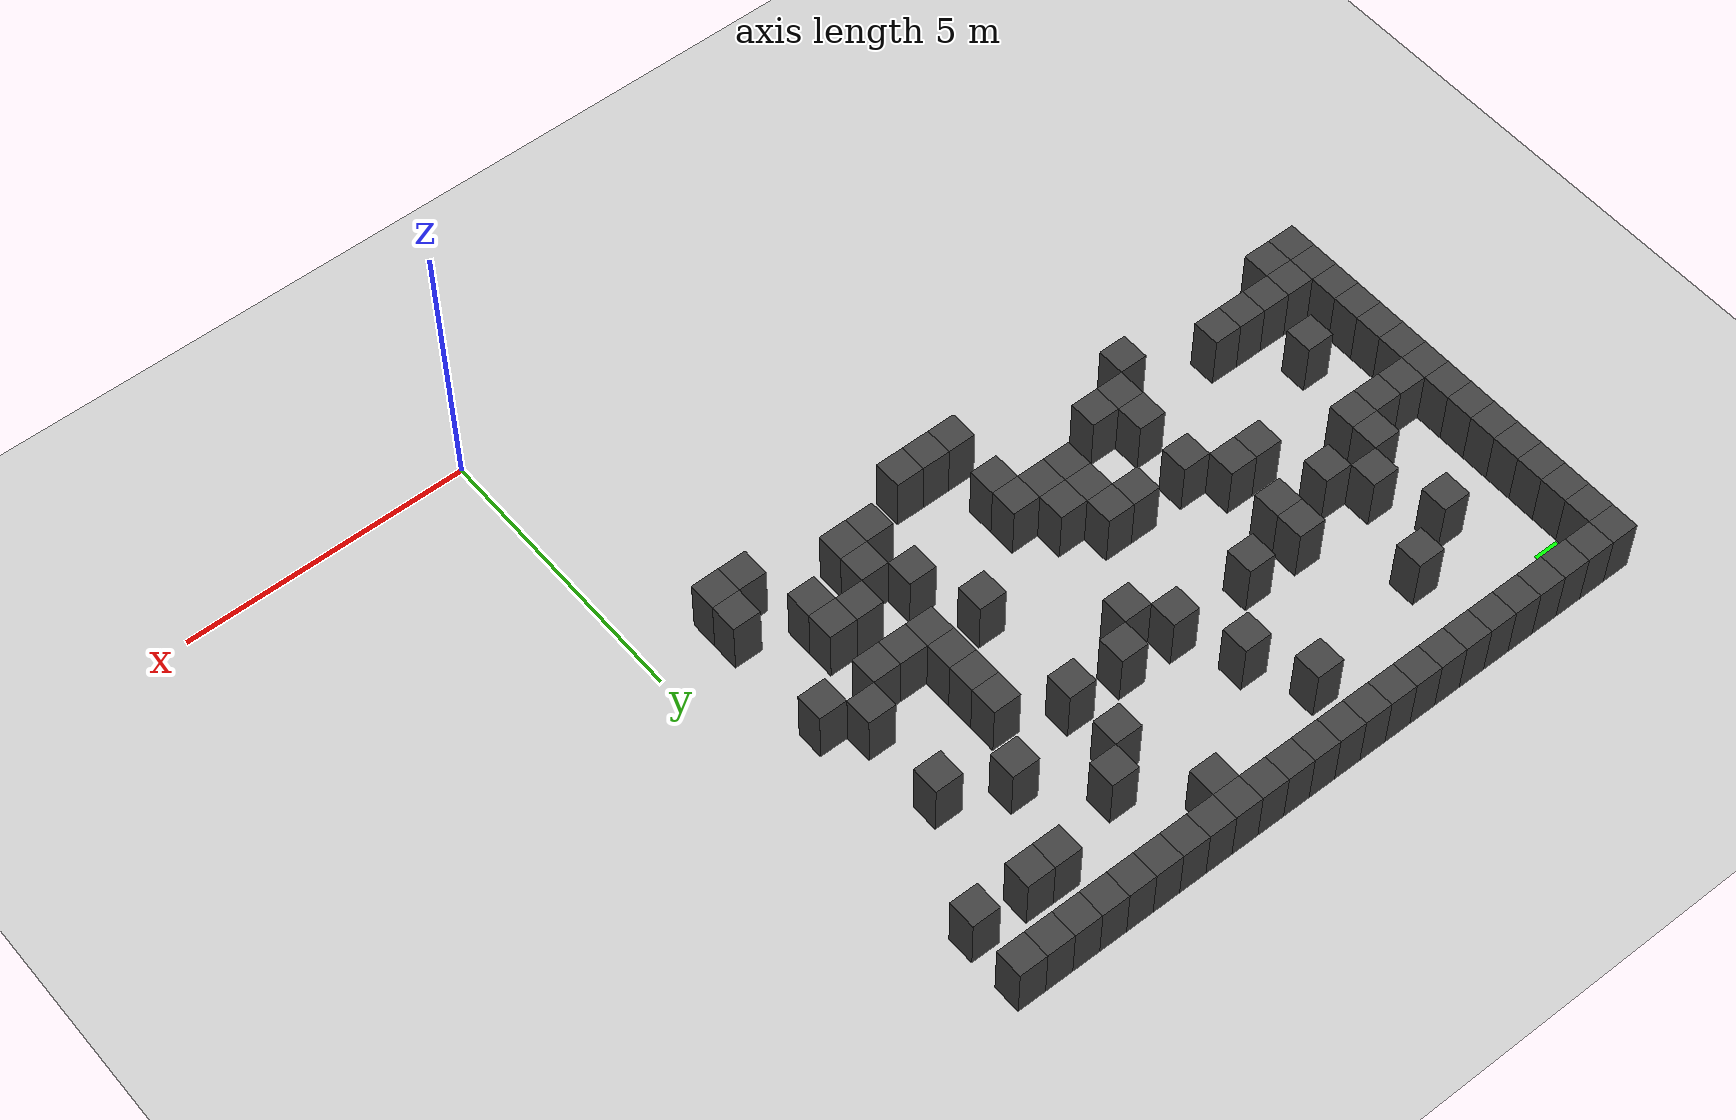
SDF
<sdf version="1.7">
 <world name="map_3955">
  <model name="ground_plane">
   <static>true</static>
   <link name="link">
    <collision name="collision">
     <geometry><plane><normal>0 0 1</normal><size>200 200</size></plane></geometry>
    </collision>
    <visual name="visual">
     <geometry><plane><normal>0 0 1</normal><size>200 200</size></plane></geometry>
     <material><ambient>0.8 0.8 0.8 1</ambient><diffuse>0.8 0.8 0.8 1</diffuse></material>
    </visual>
   </link>
  </model>
  <model name="maze_environment">
   <static>true</static>
   <link name="wall_0">
    <pose>-12.250 12.250 0.500 0 0 0</pose>
    <collision name="col"><geometry><box><size>0.5 0.5 1.0</size></box></geometry></collision>
    <visual name="vis">
     <geometry><box><size>0.5 0.5 1.0</size></box></geometry>
     <material><ambient>0.15 0.15 0.15 1</ambient><diffuse>0.25 0.25 0.25 1</diffuse></material>
    </visual>
   </link>
   <link name="wall_1">
    <pose>-11.750 12.250 0.500 0 0 0</pose>
    <collision name="col"><geometry><box><size>0.5 0.5 1.0</size></box></geometry></collision>
    <visual name="vis">
     <geometry><box><size>0.5 0.5 1.0</size></box></geometry>
     <material><ambient>0.15 0.15 0.15 1</ambient><diffuse>0.25 0.25 0.25 1</diffuse></material>
    </visual>
   </link>
   <link name="wall_2">
    <pose>-11.250 12.250 0.500 0 0 0</pose>
    <collision name="col"><geometry><box><size>0.5 0.5 1.0</size></box></geometry></collision>
    <visual name="vis">
     <geometry><box><size>0.5 0.5 1.0</size></box></geometry>
     <material><ambient>0.15 0.15 0.15 1</ambient><diffuse>0.25 0.25 0.25 1</diffuse></material>
    </visual>
   </link>
   <link name="wall_3">
    <pose>-10.750 12.250 0.500 0 0 0</pose>
    <collision name="col"><geometry><box><size>0.5 0.5 1.0</size></box></geometry></collision>
    <visual name="vis">
     <geometry><box><size>0.5 0.5 1.0</size></box></geometry>
     <material><ambient>0.15 0.15 0.15 1</ambient><diffuse>0.25 0.25 0.25 1</diffuse></material>
    </visual>
   </link>
   <link name="wall_4">
    <pose>-10.250 12.250 0.500 0 0 0</pose>
    <collision name="col"><geometry><box><size>0.5 0.5 1.0</size></box></geometry></collision>
    <visual name="vis">
     <geometry><box><size>0.5 0.5 1.0</size></box></geometry>
     <material><ambient>0.15 0.15 0.15 1</ambient><diffuse>0.25 0.25 0.25 1</diffuse></material>
    </visual>
   </link>
   <link name="wall_5">
    <pose>-9.750 12.250 0.500 0 0 0</pose>
    <collision name="col"><geometry><box><size>0.5 0.5 1.0</size></box></geometry></collision>
    <visual name="vis">
     <geometry><box><size>0.5 0.5 1.0</size></box></geometry>
     <material><ambient>0.15 0.15 0.15 1</ambient><diffuse>0.25 0.25 0.25 1</diffuse></material>
    </visual>
   </link>
   <link name="wall_6">
    <pose>-9.250 12.250 0.500 0 0 0</pose>
    <collision name="col"><geometry><box><size>0.5 0.5 1.0</size></box></geometry></collision>
    <visual name="vis">
     <geometry><box><size>0.5 0.5 1.0</size></box></geometry>
     <material><ambient>0.15 0.15 0.15 1</ambient><diffuse>0.25 0.25 0.25 1</diffuse></material>
    </visual>
   </link>
   <link name="wall_7">
    <pose>-8.750 12.250 0.500 0 0 0</pose>
    <collision name="col"><geometry><box><size>0.5 0.5 1.0</size></box></geometry></collision>
    <visual name="vis">
     <geometry><box><size>0.5 0.5 1.0</size></box></geometry>
     <material><ambient>0.15 0.15 0.15 1</ambient><diffuse>0.25 0.25 0.25 1</diffuse></material>
    </visual>
   </link>
   <link name="wall_8">
    <pose>-8.250 12.250 0.500 0 0 0</pose>
    <collision name="col"><geometry><box><size>0.5 0.5 1.0</size></box></geometry></collision>
    <visual name="vis">
     <geometry><box><size>0.5 0.5 1.0</size></box></geometry>
     <material><ambient>0.15 0.15 0.15 1</ambient><diffuse>0.25 0.25 0.25 1</diffuse></material>
    </visual>
   </link>
   <link name="wall_9">
    <pose>-7.750 12.250 0.500 0 0 0</pose>
    <collision name="col"><geometry><box><size>0.5 0.5 1.0</size></box></geometry></collision>
    <visual name="vis">
     <geometry><box><size>0.5 0.5 1.0</size></box></geometry>
     <material><ambient>0.15 0.15 0.15 1</ambient><diffuse>0.25 0.25 0.25 1</diffuse></material>
    </visual>
   </link>
   <link name="wall_10">
    <pose>-7.250 12.250 0.500 0 0 0</pose>
    <collision name="col"><geometry><box><size>0.5 0.5 1.0</size></box></geometry></collision>
    <visual name="vis">
     <geometry><box><size>0.5 0.5 1.0</size></box></geometry>
     <material><ambient>0.15 0.15 0.15 1</ambient><diffuse>0.25 0.25 0.25 1</diffuse></material>
    </visual>
   </link>
   <link name="wall_11">
    <pose>-6.750 12.250 0.500 0 0 0</pose>
    <collision name="col"><geometry><box><size>0.5 0.5 1.0</size></box></geometry></collision>
    <visual name="vis">
     <geometry><box><size>0.5 0.5 1.0</size></box></geometry>
     <material><ambient>0.15 0.15 0.15 1</ambient><diffuse>0.25 0.25 0.25 1</diffuse></material>
    </visual>
   </link>
   <link name="wall_12">
    <pose>-6.250 12.250 0.500 0 0 0</pose>
    <collision name="col"><geometry><box><size>0.5 0.5 1.0</size></box></geometry></collision>
    <visual name="vis">
     <geometry><box><size>0.5 0.5 1.0</size></box></geometry>
     <material><ambient>0.15 0.15 0.15 1</ambient><diffuse>0.25 0.25 0.25 1</diffuse></material>
    </visual>
   </link>
   <link name="wall_13">
    <pose>-5.750 12.250 0.500 0 0 0</pose>
    <collision name="col"><geometry><box><size>0.5 0.5 1.0</size></box></geometry></collision>
    <visual name="vis">
     <geometry><box><size>0.5 0.5 1.0</size></box></geometry>
     <material><ambient>0.15 0.15 0.15 1</ambient><diffuse>0.25 0.25 0.25 1</diffuse></material>
    </visual>
   </link>
   <link name="wall_14">
    <pose>-5.250 12.250 0.500 0 0 0</pose>
    <collision name="col"><geometry><box><size>0.5 0.5 1.0</size></box></geometry></collision>
    <visual name="vis">
     <geometry><box><size>0.5 0.5 1.0</size></box></geometry>
     <material><ambient>0.15 0.15 0.15 1</ambient><diffuse>0.25 0.25 0.25 1</diffuse></material>
    </visual>
   </link>
   <link name="wall_15">
    <pose>-4.750 12.250 0.500 0 0 0</pose>
    <collision name="col"><geometry><box><size>0.5 0.5 1.0</size></box></geometry></collision>
    <visual name="vis">
     <geometry><box><size>0.5 0.5 1.0</size></box></geometry>
     <material><ambient>0.15 0.15 0.15 1</ambient><diffuse>0.25 0.25 0.25 1</diffuse></material>
    </visual>
   </link>
   <link name="wall_16">
    <pose>-4.250 12.250 0.500 0 0 0</pose>
    <collision name="col"><geometry><box><size>0.5 0.5 1.0</size></box></geometry></collision>
    <visual name="vis">
     <geometry><box><size>0.5 0.5 1.0</size></box></geometry>
     <material><ambient>0.15 0.15 0.15 1</ambient><diffuse>0.25 0.25 0.25 1</diffuse></material>
    </visual>
   </link>
   <link name="wall_17">
    <pose>-3.750 12.250 0.500 0 0 0</pose>
    <collision name="col"><geometry><box><size>0.5 0.5 1.0</size></box></geometry></collision>
    <visual name="vis">
     <geometry><box><size>0.5 0.5 1.0</size></box></geometry>
     <material><ambient>0.15 0.15 0.15 1</ambient><diffuse>0.25 0.25 0.25 1</diffuse></material>
    </visual>
   </link>
   <link name="wall_18">
    <pose>-3.250 12.250 0.500 0 0 0</pose>
    <collision name="col"><geometry><box><size>0.5 0.5 1.0</size></box></geometry></collision>
    <visual name="vis">
     <geometry><box><size>0.5 0.5 1.0</size></box></geometry>
     <material><ambient>0.15 0.15 0.15 1</ambient><diffuse>0.25 0.25 0.25 1</diffuse></material>
    </visual>
   </link>
   <link name="wall_19">
    <pose>-2.750 12.250 0.500 0 0 0</pose>
    <collision name="col"><geometry><box><size>0.5 0.5 1.0</size></box></geometry></collision>
    <visual name="vis">
     <geometry><box><size>0.5 0.5 1.0</size></box></geometry>
     <material><ambient>0.15 0.15 0.15 1</ambient><diffuse>0.25 0.25 0.25 1</diffuse></material>
    </visual>
   </link>
   <link name="wall_20">
    <pose>-2.250 12.250 0.500 0 0 0</pose>
    <collision name="col"><geometry><box><size>0.5 0.5 1.0</size></box></geometry></collision>
    <visual name="vis">
     <geometry><box><size>0.5 0.5 1.0</size></box></geometry>
     <material><ambient>0.15 0.15 0.15 1</ambient><diffuse>0.25 0.25 0.25 1</diffuse></material>
    </visual>
   </link>
   <link name="wall_21">
    <pose>-1.750 12.250 0.500 0 0 0</pose>
    <collision name="col"><geometry><box><size>0.5 0.5 1.0</size></box></geometry></collision>
    <visual name="vis">
     <geometry><box><size>0.5 0.5 1.0</size></box></geometry>
     <material><ambient>0.15 0.15 0.15 1</ambient><diffuse>0.25 0.25 0.25 1</diffuse></material>
    </visual>
   </link>
   <link name="wall_22">
    <pose>-1.250 12.250 0.500 0 0 0</pose>
    <collision name="col"><geometry><box><size>0.5 0.5 1.0</size></box></geometry></collision>
    <visual name="vis">
     <geometry><box><size>0.5 0.5 1.0</size></box></geometry>
     <material><ambient>0.15 0.15 0.15 1</ambient><diffuse>0.25 0.25 0.25 1</diffuse></material>
    </visual>
   </link>
   <link name="wall_23">
    <pose>-0.750 12.250 0.500 0 0 0</pose>
    <collision name="col"><geometry><box><size>0.5 0.5 1.0</size></box></geometry></collision>
    <visual name="vis">
     <geometry><box><size>0.5 0.5 1.0</size></box></geometry>
     <material><ambient>0.15 0.15 0.15 1</ambient><diffuse>0.25 0.25 0.25 1</diffuse></material>
    </visual>
   </link>
   <link name="wall_50">
    <pose>-12.250 11.750 0.500 0 0 0</pose>
    <collision name="col"><geometry><box><size>0.5 0.5 1.0</size></box></geometry></collision>
    <visual name="vis">
     <geometry><box><size>0.5 0.5 1.0</size></box></geometry>
     <material><ambient>0.15 0.15 0.15 1</ambient><diffuse>0.25 0.25 0.25 1</diffuse></material>
    </visual>
   </link>
   <link name="wall_51">
    <pose>-4.750 11.750 0.500 0 0 0</pose>
    <collision name="col"><geometry><box><size>0.5 0.5 1.0</size></box></geometry></collision>
    <visual name="vis">
     <geometry><box><size>0.5 0.5 1.0</size></box></geometry>
     <material><ambient>0.15 0.15 0.15 1</ambient><diffuse>0.25 0.25 0.25 1</diffuse></material>
    </visual>
   </link>
   <link name="wall_58">
    <pose>-12.250 11.250 0.500 0 0 0</pose>
    <collision name="col"><geometry><box><size>0.5 0.5 1.0</size></box></geometry></collision>
    <visual name="vis">
     <geometry><box><size>0.5 0.5 1.0</size></box></geometry>
     <material><ambient>0.15 0.15 0.15 1</ambient><diffuse>0.25 0.25 0.25 1</diffuse></material>
    </visual>
   </link>
   <link name="wall_59">
    <pose>-7.250 11.250 0.500 0 0 0</pose>
    <collision name="col"><geometry><box><size>0.5 0.5 1.0</size></box></geometry></collision>
    <visual name="vis">
     <geometry><box><size>0.5 0.5 1.0</size></box></geometry>
     <material><ambient>0.15 0.15 0.15 1</ambient><diffuse>0.25 0.25 0.25 1</diffuse></material>
    </visual>
   </link>
   <link name="wall_60">
    <pose>-2.250 11.250 0.500 0 0 0</pose>
    <collision name="col"><geometry><box><size>0.5 0.5 1.0</size></box></geometry></collision>
    <visual name="vis">
     <geometry><box><size>0.5 0.5 1.0</size></box></geometry>
     <material><ambient>0.15 0.15 0.15 1</ambient><diffuse>0.25 0.25 0.25 1</diffuse></material>
    </visual>
   </link>
   <link name="wall_61">
    <pose>-1.750 11.250 0.500 0 0 0</pose>
    <collision name="col"><geometry><box><size>0.5 0.5 1.0</size></box></geometry></collision>
    <visual name="vis">
     <geometry><box><size>0.5 0.5 1.0</size></box></geometry>
     <material><ambient>0.15 0.15 0.15 1</ambient><diffuse>0.25 0.25 0.25 1</diffuse></material>
    </visual>
   </link>
   <link name="wall_62">
    <pose>-0.750 11.250 0.500 0 0 0</pose>
    <collision name="col"><geometry><box><size>0.5 0.5 1.0</size></box></geometry></collision>
    <visual name="vis">
     <geometry><box><size>0.5 0.5 1.0</size></box></geometry>
     <material><ambient>0.15 0.15 0.15 1</ambient><diffuse>0.25 0.25 0.25 1</diffuse></material>
    </visual>
   </link>
   <link name="wall_69">
    <pose>-12.250 10.750 0.500 0 0 0</pose>
    <collision name="col"><geometry><box><size>0.5 0.5 1.0</size></box></geometry></collision>
    <visual name="vis">
     <geometry><box><size>0.5 0.5 1.0</size></box></geometry>
     <material><ambient>0.15 0.15 0.15 1</ambient><diffuse>0.25 0.25 0.25 1</diffuse></material>
    </visual>
   </link>
   <link name="wall_70">
    <pose>-9.750 10.750 0.500 0 0 0</pose>
    <collision name="col"><geometry><box><size>0.5 0.5 1.0</size></box></geometry></collision>
    <visual name="vis">
     <geometry><box><size>0.5 0.5 1.0</size></box></geometry>
     <material><ambient>0.15 0.15 0.15 1</ambient><diffuse>0.25 0.25 0.25 1</diffuse></material>
    </visual>
   </link>
   <link name="wall_71">
    <pose>-3.750 10.750 0.500 0 0 0</pose>
    <collision name="col"><geometry><box><size>0.5 0.5 1.0</size></box></geometry></collision>
    <visual name="vis">
     <geometry><box><size>0.5 0.5 1.0</size></box></geometry>
     <material><ambient>0.15 0.15 0.15 1</ambient><diffuse>0.25 0.25 0.25 1</diffuse></material>
    </visual>
   </link>
   <link name="wall_77">
    <pose>-12.250 10.250 0.500 0 0 0</pose>
    <collision name="col"><geometry><box><size>0.5 0.5 1.0</size></box></geometry></collision>
    <visual name="vis">
     <geometry><box><size>0.5 0.5 1.0</size></box></geometry>
     <material><ambient>0.15 0.15 0.15 1</ambient><diffuse>0.25 0.25 0.25 1</diffuse></material>
    </visual>
   </link>
   <link name="wall_78">
    <pose>-10.750 10.250 0.500 0 0 0</pose>
    <collision name="col"><geometry><box><size>0.5 0.5 1.0</size></box></geometry></collision>
    <visual name="vis">
     <geometry><box><size>0.5 0.5 1.0</size></box></geometry>
     <material><ambient>0.15 0.15 0.15 1</ambient><diffuse>0.25 0.25 0.25 1</diffuse></material>
    </visual>
   </link>
   <link name="wall_79">
    <pose>-6.750 10.250 0.500 0 0 0</pose>
    <collision name="col"><geometry><box><size>0.5 0.5 1.0</size></box></geometry></collision>
    <visual name="vis">
     <geometry><box><size>0.5 0.5 1.0</size></box></geometry>
     <material><ambient>0.15 0.15 0.15 1</ambient><diffuse>0.25 0.25 0.25 1</diffuse></material>
    </visual>
   </link>
   <link name="wall_80">
    <pose>-4.250 10.250 0.500 0 0 0</pose>
    <collision name="col"><geometry><box><size>0.5 0.5 1.0</size></box></geometry></collision>
    <visual name="vis">
     <geometry><box><size>0.5 0.5 1.0</size></box></geometry>
     <material><ambient>0.15 0.15 0.15 1</ambient><diffuse>0.25 0.25 0.25 1</diffuse></material>
    </visual>
   </link>
   <link name="wall_87">
    <pose>-12.250 9.750 0.500 0 0 0</pose>
    <collision name="col"><geometry><box><size>0.5 0.5 1.0</size></box></geometry></collision>
    <visual name="vis">
     <geometry><box><size>0.5 0.5 1.0</size></box></geometry>
     <material><ambient>0.15 0.15 0.15 1</ambient><diffuse>0.25 0.25 0.25 1</diffuse></material>
    </visual>
   </link>
   <link name="wall_88">
    <pose>-2.750 9.750 0.500 0 0 0</pose>
    <collision name="col"><geometry><box><size>0.5 0.5 1.0</size></box></geometry></collision>
    <visual name="vis">
     <geometry><box><size>0.5 0.5 1.0</size></box></geometry>
     <material><ambient>0.15 0.15 0.15 1</ambient><diffuse>0.25 0.25 0.25 1</diffuse></material>
    </visual>
   </link>
   <link name="wall_99">
    <pose>-12.250 9.250 0.500 0 0 0</pose>
    <collision name="col"><geometry><box><size>0.5 0.5 1.0</size></box></geometry></collision>
    <visual name="vis">
     <geometry><box><size>0.5 0.5 1.0</size></box></geometry>
     <material><ambient>0.15 0.15 0.15 1</ambient><diffuse>0.25 0.25 0.25 1</diffuse></material>
    </visual>
   </link>
   <link name="wall_100">
    <pose>-10.250 9.250 0.500 0 0 0</pose>
    <collision name="col"><geometry><box><size>0.5 0.5 1.0</size></box></geometry></collision>
    <visual name="vis">
     <geometry><box><size>0.5 0.5 1.0</size></box></geometry>
     <material><ambient>0.15 0.15 0.15 1</ambient><diffuse>0.25 0.25 0.25 1</diffuse></material>
    </visual>
   </link>
   <link name="wall_101">
    <pose>-8.750 9.250 0.500 0 0 0</pose>
    <collision name="col"><geometry><box><size>0.5 0.5 1.0</size></box></geometry></collision>
    <visual name="vis">
     <geometry><box><size>0.5 0.5 1.0</size></box></geometry>
     <material><ambient>0.15 0.15 0.15 1</ambient><diffuse>0.25 0.25 0.25 1</diffuse></material>
    </visual>
   </link>
   <link name="wall_102">
    <pose>-7.750 9.250 0.500 0 0 0</pose>
    <collision name="col"><geometry><box><size>0.5 0.5 1.0</size></box></geometry></collision>
    <visual name="vis">
     <geometry><box><size>0.5 0.5 1.0</size></box></geometry>
     <material><ambient>0.15 0.15 0.15 1</ambient><diffuse>0.25 0.25 0.25 1</diffuse></material>
    </visual>
   </link>
   <link name="wall_103">
    <pose>-6.250 9.250 0.500 0 0 0</pose>
    <collision name="col"><geometry><box><size>0.5 0.5 1.0</size></box></geometry></collision>
    <visual name="vis">
     <geometry><box><size>0.5 0.5 1.0</size></box></geometry>
     <material><ambient>0.15 0.15 0.15 1</ambient><diffuse>0.25 0.25 0.25 1</diffuse></material>
    </visual>
   </link>
   <link name="wall_104">
    <pose>-5.250 9.250 0.500 0 0 0</pose>
    <collision name="col"><geometry><box><size>0.5 0.5 1.0</size></box></geometry></collision>
    <visual name="vis">
     <geometry><box><size>0.5 0.5 1.0</size></box></geometry>
     <material><ambient>0.15 0.15 0.15 1</ambient><diffuse>0.25 0.25 0.25 1</diffuse></material>
    </visual>
   </link>
   <link name="wall_105">
    <pose>-4.250 9.250 0.500 0 0 0</pose>
    <collision name="col"><geometry><box><size>0.5 0.5 1.0</size></box></geometry></collision>
    <visual name="vis">
     <geometry><box><size>0.5 0.5 1.0</size></box></geometry>
     <material><ambient>0.15 0.15 0.15 1</ambient><diffuse>0.25 0.25 0.25 1</diffuse></material>
    </visual>
   </link>
   <link name="wall_106">
    <pose>-1.750 9.250 0.500 0 0 0</pose>
    <collision name="col"><geometry><box><size>0.5 0.5 1.0</size></box></geometry></collision>
    <visual name="vis">
     <geometry><box><size>0.5 0.5 1.0</size></box></geometry>
     <material><ambient>0.15 0.15 0.15 1</ambient><diffuse>0.25 0.25 0.25 1</diffuse></material>
    </visual>
   </link>
   <link name="wall_116">
    <pose>-12.250 8.750 0.500 0 0 0</pose>
    <collision name="col"><geometry><box><size>0.5 0.5 1.0</size></box></geometry></collision>
    <visual name="vis">
     <geometry><box><size>0.5 0.5 1.0</size></box></geometry>
     <material><ambient>0.15 0.15 0.15 1</ambient><diffuse>0.25 0.25 0.25 1</diffuse></material>
    </visual>
   </link>
   <link name="wall_117">
    <pose>-10.750 8.750 0.500 0 0 0</pose>
    <collision name="col"><geometry><box><size>0.5 0.5 1.0</size></box></geometry></collision>
    <visual name="vis">
     <geometry><box><size>0.5 0.5 1.0</size></box></geometry>
     <material><ambient>0.15 0.15 0.15 1</ambient><diffuse>0.25 0.25 0.25 1</diffuse></material>
    </visual>
   </link>
   <link name="wall_118">
    <pose>-9.750 8.750 0.500 0 0 0</pose>
    <collision name="col"><geometry><box><size>0.5 0.5 1.0</size></box></geometry></collision>
    <visual name="vis">
     <geometry><box><size>0.5 0.5 1.0</size></box></geometry>
     <material><ambient>0.15 0.15 0.15 1</ambient><diffuse>0.25 0.25 0.25 1</diffuse></material>
    </visual>
   </link>
   <link name="wall_119">
    <pose>-8.750 8.750 0.500 0 0 0</pose>
    <collision name="col"><geometry><box><size>0.5 0.5 1.0</size></box></geometry></collision>
    <visual name="vis">
     <geometry><box><size>0.5 0.5 1.0</size></box></geometry>
     <material><ambient>0.15 0.15 0.15 1</ambient><diffuse>0.25 0.25 0.25 1</diffuse></material>
    </visual>
   </link>
   <link name="wall_120">
    <pose>-5.750 8.750 0.500 0 0 0</pose>
    <collision name="col"><geometry><box><size>0.5 0.5 1.0</size></box></geometry></collision>
    <visual name="vis">
     <geometry><box><size>0.5 0.5 1.0</size></box></geometry>
     <material><ambient>0.15 0.15 0.15 1</ambient><diffuse>0.25 0.25 0.25 1</diffuse></material>
    </visual>
   </link>
   <link name="wall_121">
    <pose>-3.250 8.750 0.500 0 0 0</pose>
    <collision name="col"><geometry><box><size>0.5 0.5 1.0</size></box></geometry></collision>
    <visual name="vis">
     <geometry><box><size>0.5 0.5 1.0</size></box></geometry>
     <material><ambient>0.15 0.15 0.15 1</ambient><diffuse>0.25 0.25 0.25 1</diffuse></material>
    </visual>
   </link>
   <link name="wall_130">
    <pose>-12.250 8.250 0.500 0 0 0</pose>
    <collision name="col"><geometry><box><size>0.5 0.5 1.0</size></box></geometry></collision>
    <visual name="vis">
     <geometry><box><size>0.5 0.5 1.0</size></box></geometry>
     <material><ambient>0.15 0.15 0.15 1</ambient><diffuse>0.25 0.25 0.25 1</diffuse></material>
    </visual>
   </link>
   <link name="wall_131">
    <pose>-11.750 8.250 0.500 0 0 0</pose>
    <collision name="col"><geometry><box><size>0.5 0.5 1.0</size></box></geometry></collision>
    <visual name="vis">
     <geometry><box><size>0.5 0.5 1.0</size></box></geometry>
     <material><ambient>0.15 0.15 0.15 1</ambient><diffuse>0.25 0.25 0.25 1</diffuse></material>
    </visual>
   </link>
   <link name="wall_132">
    <pose>-11.250 8.250 0.500 0 0 0</pose>
    <collision name="col"><geometry><box><size>0.5 0.5 1.0</size></box></geometry></collision>
    <visual name="vis">
     <geometry><box><size>0.5 0.5 1.0</size></box></geometry>
     <material><ambient>0.15 0.15 0.15 1</ambient><diffuse>0.25 0.25 0.25 1</diffuse></material>
    </visual>
   </link>
   <link name="wall_133">
    <pose>-10.750 8.250 0.500 0 0 0</pose>
    <collision name="col"><geometry><box><size>0.5 0.5 1.0</size></box></geometry></collision>
    <visual name="vis">
     <geometry><box><size>0.5 0.5 1.0</size></box></geometry>
     <material><ambient>0.15 0.15 0.15 1</ambient><diffuse>0.25 0.25 0.25 1</diffuse></material>
    </visual>
   </link>
   <link name="wall_134">
    <pose>-3.250 8.250 0.500 0 0 0</pose>
    <collision name="col"><geometry><box><size>0.5 0.5 1.0</size></box></geometry></collision>
    <visual name="vis">
     <geometry><box><size>0.5 0.5 1.0</size></box></geometry>
     <material><ambient>0.15 0.15 0.15 1</ambient><diffuse>0.25 0.25 0.25 1</diffuse></material>
    </visual>
   </link>
   <link name="wall_137">
    <pose>-12.250 7.750 0.500 0 0 0</pose>
    <collision name="col"><geometry><box><size>0.5 0.5 1.0</size></box></geometry></collision>
    <visual name="vis">
     <geometry><box><size>0.5 0.5 1.0</size></box></geometry>
     <material><ambient>0.15 0.15 0.15 1</ambient><diffuse>0.25 0.25 0.25 1</diffuse></material>
    </visual>
   </link>
   <link name="wall_138">
    <pose>-9.250 7.750 0.500 0 0 0</pose>
    <collision name="col"><geometry><box><size>0.5 0.5 1.0</size></box></geometry></collision>
    <visual name="vis">
     <geometry><box><size>0.5 0.5 1.0</size></box></geometry>
     <material><ambient>0.15 0.15 0.15 1</ambient><diffuse>0.25 0.25 0.25 1</diffuse></material>
    </visual>
   </link>
   <link name="wall_139">
    <pose>-8.750 7.750 0.500 0 0 0</pose>
    <collision name="col"><geometry><box><size>0.5 0.5 1.0</size></box></geometry></collision>
    <visual name="vis">
     <geometry><box><size>0.5 0.5 1.0</size></box></geometry>
     <material><ambient>0.15 0.15 0.15 1</ambient><diffuse>0.25 0.25 0.25 1</diffuse></material>
    </visual>
   </link>
   <link name="wall_140">
    <pose>-3.250 7.750 0.500 0 0 0</pose>
    <collision name="col"><geometry><box><size>0.5 0.5 1.0</size></box></geometry></collision>
    <visual name="vis">
     <geometry><box><size>0.5 0.5 1.0</size></box></geometry>
     <material><ambient>0.15 0.15 0.15 1</ambient><diffuse>0.25 0.25 0.25 1</diffuse></material>
    </visual>
   </link>
   <link name="wall_141">
    <pose>-1.750 7.750 0.500 0 0 0</pose>
    <collision name="col"><geometry><box><size>0.5 0.5 1.0</size></box></geometry></collision>
    <visual name="vis">
     <geometry><box><size>0.5 0.5 1.0</size></box></geometry>
     <material><ambient>0.15 0.15 0.15 1</ambient><diffuse>0.25 0.25 0.25 1</diffuse></material>
    </visual>
   </link>
   <link name="wall_145">
    <pose>-12.250 7.250 0.500 0 0 0</pose>
    <collision name="col"><geometry><box><size>0.5 0.5 1.0</size></box></geometry></collision>
    <visual name="vis">
     <geometry><box><size>0.5 0.5 1.0</size></box></geometry>
     <material><ambient>0.15 0.15 0.15 1</ambient><diffuse>0.25 0.25 0.25 1</diffuse></material>
    </visual>
   </link>
   <link name="wall_146">
    <pose>-8.250 7.250 0.500 0 0 0</pose>
    <collision name="col"><geometry><box><size>0.5 0.5 1.0</size></box></geometry></collision>
    <visual name="vis">
     <geometry><box><size>0.5 0.5 1.0</size></box></geometry>
     <material><ambient>0.15 0.15 0.15 1</ambient><diffuse>0.25 0.25 0.25 1</diffuse></material>
    </visual>
   </link>
   <link name="wall_147">
    <pose>-7.250 7.250 0.500 0 0 0</pose>
    <collision name="col"><geometry><box><size>0.5 0.5 1.0</size></box></geometry></collision>
    <visual name="vis">
     <geometry><box><size>0.5 0.5 1.0</size></box></geometry>
     <material><ambient>0.15 0.15 0.15 1</ambient><diffuse>0.25 0.25 0.25 1</diffuse></material>
    </visual>
   </link>
   <link name="wall_148">
    <pose>-6.750 7.250 0.500 0 0 0</pose>
    <collision name="col"><geometry><box><size>0.5 0.5 1.0</size></box></geometry></collision>
    <visual name="vis">
     <geometry><box><size>0.5 0.5 1.0</size></box></geometry>
     <material><ambient>0.15 0.15 0.15 1</ambient><diffuse>0.25 0.25 0.25 1</diffuse></material>
    </visual>
   </link>
   <link name="wall_149">
    <pose>-4.250 7.250 0.500 0 0 0</pose>
    <collision name="col"><geometry><box><size>0.5 0.5 1.0</size></box></geometry></collision>
    <visual name="vis">
     <geometry><box><size>0.5 0.5 1.0</size></box></geometry>
     <material><ambient>0.15 0.15 0.15 1</ambient><diffuse>0.25 0.25 0.25 1</diffuse></material>
    </visual>
   </link>
   <link name="wall_150">
    <pose>-3.250 7.250 0.500 0 0 0</pose>
    <collision name="col"><geometry><box><size>0.5 0.5 1.0</size></box></geometry></collision>
    <visual name="vis">
     <geometry><box><size>0.5 0.5 1.0</size></box></geometry>
     <material><ambient>0.15 0.15 0.15 1</ambient><diffuse>0.25 0.25 0.25 1</diffuse></material>
    </visual>
   </link>
   <link name="wall_151">
    <pose>-2.750 7.250 0.500 0 0 0</pose>
    <collision name="col"><geometry><box><size>0.5 0.5 1.0</size></box></geometry></collision>
    <visual name="vis">
     <geometry><box><size>0.5 0.5 1.0</size></box></geometry>
     <material><ambient>0.15 0.15 0.15 1</ambient><diffuse>0.25 0.25 0.25 1</diffuse></material>
    </visual>
   </link>
   <link name="wall_152">
    <pose>-2.250 7.250 0.500 0 0 0</pose>
    <collision name="col"><geometry><box><size>0.5 0.5 1.0</size></box></geometry></collision>
    <visual name="vis">
     <geometry><box><size>0.5 0.5 1.0</size></box></geometry>
     <material><ambient>0.15 0.15 0.15 1</ambient><diffuse>0.25 0.25 0.25 1</diffuse></material>
    </visual>
   </link>
   <link name="wall_153">
    <pose>-1.250 7.250 0.500 0 0 0</pose>
    <collision name="col"><geometry><box><size>0.5 0.5 1.0</size></box></geometry></collision>
    <visual name="vis">
     <geometry><box><size>0.5 0.5 1.0</size></box></geometry>
     <material><ambient>0.15 0.15 0.15 1</ambient><diffuse>0.25 0.25 0.25 1</diffuse></material>
    </visual>
   </link>
   <link name="wall_158">
    <pose>-12.250 6.750 0.500 0 0 0</pose>
    <collision name="col"><geometry><box><size>0.5 0.5 1.0</size></box></geometry></collision>
    <visual name="vis">
     <geometry><box><size>0.5 0.5 1.0</size></box></geometry>
     <material><ambient>0.15 0.15 0.15 1</ambient><diffuse>0.25 0.25 0.25 1</diffuse></material>
    </visual>
   </link>
   <link name="wall_159">
    <pose>-11.250 6.750 0.500 0 0 0</pose>
    <collision name="col"><geometry><box><size>0.5 0.5 1.0</size></box></geometry></collision>
    <visual name="vis">
     <geometry><box><size>0.5 0.5 1.0</size></box></geometry>
     <material><ambient>0.15 0.15 0.15 1</ambient><diffuse>0.25 0.25 0.25 1</diffuse></material>
    </visual>
   </link>
   <link name="wall_160">
    <pose>-6.750 6.750 0.500 0 0 0</pose>
    <collision name="col"><geometry><box><size>0.5 0.5 1.0</size></box></geometry></collision>
    <visual name="vis">
     <geometry><box><size>0.5 0.5 1.0</size></box></geometry>
     <material><ambient>0.15 0.15 0.15 1</ambient><diffuse>0.25 0.25 0.25 1</diffuse></material>
    </visual>
   </link>
   <link name="wall_161">
    <pose>-6.250 6.750 0.500 0 0 0</pose>
    <collision name="col"><geometry><box><size>0.5 0.5 1.0</size></box></geometry></collision>
    <visual name="vis">
     <geometry><box><size>0.5 0.5 1.0</size></box></geometry>
     <material><ambient>0.15 0.15 0.15 1</ambient><diffuse>0.25 0.25 0.25 1</diffuse></material>
    </visual>
   </link>
   <link name="wall_170">
    <pose>-12.250 6.250 0.500 0 0 0</pose>
    <collision name="col"><geometry><box><size>0.5 0.5 1.0</size></box></geometry></collision>
    <visual name="vis">
     <geometry><box><size>0.5 0.5 1.0</size></box></geometry>
     <material><ambient>0.15 0.15 0.15 1</ambient><diffuse>0.25 0.25 0.25 1</diffuse></material>
    </visual>
   </link>
   <link name="wall_171">
    <pose>-8.250 6.250 0.500 0 0 0</pose>
    <collision name="col"><geometry><box><size>0.5 0.5 1.0</size></box></geometry></collision>
    <visual name="vis">
     <geometry><box><size>0.5 0.5 1.0</size></box></geometry>
     <material><ambient>0.15 0.15 0.15 1</ambient><diffuse>0.25 0.25 0.25 1</diffuse></material>
    </visual>
   </link>
   <link name="wall_172">
    <pose>-6.750 6.250 0.500 0 0 0</pose>
    <collision name="col"><geometry><box><size>0.5 0.5 1.0</size></box></geometry></collision>
    <visual name="vis">
     <geometry><box><size>0.5 0.5 1.0</size></box></geometry>
     <material><ambient>0.15 0.15 0.15 1</ambient><diffuse>0.25 0.25 0.25 1</diffuse></material>
    </visual>
   </link>
   <link name="wall_173">
    <pose>-6.250 6.250 0.500 0 0 0</pose>
    <collision name="col"><geometry><box><size>0.5 0.5 1.0</size></box></geometry></collision>
    <visual name="vis">
     <geometry><box><size>0.5 0.5 1.0</size></box></geometry>
     <material><ambient>0.15 0.15 0.15 1</ambient><diffuse>0.25 0.25 0.25 1</diffuse></material>
    </visual>
   </link>
   <link name="wall_174">
    <pose>-5.750 6.250 0.500 0 0 0</pose>
    <collision name="col"><geometry><box><size>0.5 0.5 1.0</size></box></geometry></collision>
    <visual name="vis">
     <geometry><box><size>0.5 0.5 1.0</size></box></geometry>
     <material><ambient>0.15 0.15 0.15 1</ambient><diffuse>0.25 0.25 0.25 1</diffuse></material>
    </visual>
   </link>
   <link name="wall_175">
    <pose>-3.750 6.250 0.500 0 0 0</pose>
    <collision name="col"><geometry><box><size>0.5 0.5 1.0</size></box></geometry></collision>
    <visual name="vis">
     <geometry><box><size>0.5 0.5 1.0</size></box></geometry>
     <material><ambient>0.15 0.15 0.15 1</ambient><diffuse>0.25 0.25 0.25 1</diffuse></material>
    </visual>
   </link>
   <link name="wall_176">
    <pose>-2.750 6.250 0.500 0 0 0</pose>
    <collision name="col"><geometry><box><size>0.5 0.5 1.0</size></box></geometry></collision>
    <visual name="vis">
     <geometry><box><size>0.5 0.5 1.0</size></box></geometry>
     <material><ambient>0.15 0.15 0.15 1</ambient><diffuse>0.25 0.25 0.25 1</diffuse></material>
    </visual>
   </link>
   <link name="wall_177">
    <pose>-2.250 6.250 0.500 0 0 0</pose>
    <collision name="col"><geometry><box><size>0.5 0.5 1.0</size></box></geometry></collision>
    <visual name="vis">
     <geometry><box><size>0.5 0.5 1.0</size></box></geometry>
     <material><ambient>0.15 0.15 0.15 1</ambient><diffuse>0.25 0.25 0.25 1</diffuse></material>
    </visual>
   </link>
   <link name="wall_184">
    <pose>-12.250 5.750 0.500 0 0 0</pose>
    <collision name="col"><geometry><box><size>0.5 0.5 1.0</size></box></geometry></collision>
    <visual name="vis">
     <geometry><box><size>0.5 0.5 1.0</size></box></geometry>
     <material><ambient>0.15 0.15 0.15 1</ambient><diffuse>0.25 0.25 0.25 1</diffuse></material>
    </visual>
   </link>
   <link name="wall_185">
    <pose>-11.750 5.750 0.500 0 0 0</pose>
    <collision name="col"><geometry><box><size>0.5 0.5 1.0</size></box></geometry></collision>
    <visual name="vis">
     <geometry><box><size>0.5 0.5 1.0</size></box></geometry>
     <material><ambient>0.15 0.15 0.15 1</ambient><diffuse>0.25 0.25 0.25 1</diffuse></material>
    </visual>
   </link>
   <link name="wall_186">
    <pose>-11.250 5.750 0.500 0 0 0</pose>
    <collision name="col"><geometry><box><size>0.5 0.5 1.0</size></box></geometry></collision>
    <visual name="vis">
     <geometry><box><size>0.5 0.5 1.0</size></box></geometry>
     <material><ambient>0.15 0.15 0.15 1</ambient><diffuse>0.25 0.25 0.25 1</diffuse></material>
    </visual>
   </link>
   <link name="wall_187">
    <pose>-10.750 5.750 0.500 0 0 0</pose>
    <collision name="col"><geometry><box><size>0.5 0.5 1.0</size></box></geometry></collision>
    <visual name="vis">
     <geometry><box><size>0.5 0.5 1.0</size></box></geometry>
     <material><ambient>0.15 0.15 0.15 1</ambient><diffuse>0.25 0.25 0.25 1</diffuse></material>
    </visual>
   </link>
   <link name="wall_188">
    <pose>-10.250 5.750 0.500 0 0 0</pose>
    <collision name="col"><geometry><box><size>0.5 0.5 1.0</size></box></geometry></collision>
    <visual name="vis">
     <geometry><box><size>0.5 0.5 1.0</size></box></geometry>
     <material><ambient>0.15 0.15 0.15 1</ambient><diffuse>0.25 0.25 0.25 1</diffuse></material>
    </visual>
   </link>
   <link name="wall_189">
    <pose>-8.250 5.750 0.500 0 0 0</pose>
    <collision name="col"><geometry><box><size>0.5 0.5 1.0</size></box></geometry></collision>
    <visual name="vis">
     <geometry><box><size>0.5 0.5 1.0</size></box></geometry>
     <material><ambient>0.15 0.15 0.15 1</ambient><diffuse>0.25 0.25 0.25 1</diffuse></material>
    </visual>
   </link>
   <link name="wall_190">
    <pose>-7.750 5.750 0.500 0 0 0</pose>
    <collision name="col"><geometry><box><size>0.5 0.5 1.0</size></box></geometry></collision>
    <visual name="vis">
     <geometry><box><size>0.5 0.5 1.0</size></box></geometry>
     <material><ambient>0.15 0.15 0.15 1</ambient><diffuse>0.25 0.25 0.25 1</diffuse></material>
    </visual>
   </link>
   <link name="wall_191">
    <pose>-5.750 5.750 0.500 0 0 0</pose>
    <collision name="col"><geometry><box><size>0.5 0.5 1.0</size></box></geometry></collision>
    <visual name="vis">
     <geometry><box><size>0.5 0.5 1.0</size></box></geometry>
     <material><ambient>0.15 0.15 0.15 1</ambient><diffuse>0.25 0.25 0.25 1</diffuse></material>
    </visual>
   </link>
   <link name="wall_192">
    <pose>-3.250 5.750 0.500 0 0 0</pose>
    <collision name="col"><geometry><box><size>0.5 0.5 1.0</size></box></geometry></collision>
    <visual name="vis">
     <geometry><box><size>0.5 0.5 1.0</size></box></geometry>
     <material><ambient>0.15 0.15 0.15 1</ambient><diffuse>0.25 0.25 0.25 1</diffuse></material>
    </visual>
   </link>
   <link name="wall_193">
    <pose>-2.250 5.750 0.500 0 0 0</pose>
    <collision name="col"><geometry><box><size>0.5 0.5 1.0</size></box></geometry></collision>
    <visual name="vis">
     <geometry><box><size>0.5 0.5 1.0</size></box></geometry>
     <material><ambient>0.15 0.15 0.15 1</ambient><diffuse>0.25 0.25 0.25 1</diffuse></material>
    </visual>
   </link>
   <link name="wall_199">
    <pose>-12.250 5.250 0.500 0 0 0</pose>
    <collision name="col"><geometry><box><size>0.5 0.5 1.0</size></box></geometry></collision>
    <visual name="vis">
     <geometry><box><size>0.5 0.5 1.0</size></box></geometry>
     <material><ambient>0.15 0.15 0.15 1</ambient><diffuse>0.25 0.25 0.25 1</diffuse></material>
    </visual>
   </link>
   <link name="wall_200">
    <pose>-11.750 5.250 0.500 0 0 0</pose>
    <collision name="col"><geometry><box><size>0.5 0.5 1.0</size></box></geometry></collision>
    <visual name="vis">
     <geometry><box><size>0.5 0.5 1.0</size></box></geometry>
     <material><ambient>0.15 0.15 0.15 1</ambient><diffuse>0.25 0.25 0.25 1</diffuse></material>
    </visual>
   </link>
   <link name="wall_201">
    <pose>-8.750 5.250 0.500 0 0 0</pose>
    <collision name="col"><geometry><box><size>0.5 0.5 1.0</size></box></geometry></collision>
    <visual name="vis">
     <geometry><box><size>0.5 0.5 1.0</size></box></geometry>
     <material><ambient>0.15 0.15 0.15 1</ambient><diffuse>0.25 0.25 0.25 1</diffuse></material>
    </visual>
   </link>
   <link name="wall_202">
    <pose>-3.750 5.250 0.500 0 0 0</pose>
    <collision name="col"><geometry><box><size>0.5 0.5 1.0</size></box></geometry></collision>
    <visual name="vis">
     <geometry><box><size>0.5 0.5 1.0</size></box></geometry>
     <material><ambient>0.15 0.15 0.15 1</ambient><diffuse>0.25 0.25 0.25 1</diffuse></material>
    </visual>
   </link>
   <link name="wall_203">
    <pose>-3.250 5.250 0.500 0 0 0</pose>
    <collision name="col"><geometry><box><size>0.5 0.5 1.0</size></box></geometry></collision>
    <visual name="vis">
     <geometry><box><size>0.5 0.5 1.0</size></box></geometry>
     <material><ambient>0.15 0.15 0.15 1</ambient><diffuse>0.25 0.25 0.25 1</diffuse></material>
    </visual>
   </link>
   <link name="wall_204">
    <pose>-1.250 5.250 0.500 0 0 0</pose>
    <collision name="col"><geometry><box><size>0.5 0.5 1.0</size></box></geometry></collision>
    <visual name="vis">
     <geometry><box><size>0.5 0.5 1.0</size></box></geometry>
     <material><ambient>0.15 0.15 0.15 1</ambient><diffuse>0.25 0.25 0.25 1</diffuse></material>
    </visual>
   </link>
   <link name="wall_217">
    <pose>-5.750 4.750 0.500 0 0 0</pose>
    <collision name="col"><geometry><box><size>0.5 0.5 1.0</size></box></geometry></collision>
    <visual name="vis">
     <geometry><box><size>0.5 0.5 1.0</size></box></geometry>
     <material><ambient>0.15 0.15 0.15 1</ambient><diffuse>0.25 0.25 0.25 1</diffuse></material>
    </visual>
   </link>
   <link name="wall_218">
    <pose>-5.250 4.750 0.500 0 0 0</pose>
    <collision name="col"><geometry><box><size>0.5 0.5 1.0</size></box></geometry></collision>
    <visual name="vis">
     <geometry><box><size>0.5 0.5 1.0</size></box></geometry>
     <material><ambient>0.15 0.15 0.15 1</ambient><diffuse>0.25 0.25 0.25 1</diffuse></material>
    </visual>
   </link>
   <link name="wall_219">
    <pose>-4.750 4.750 0.500 0 0 0</pose>
    <collision name="col"><geometry><box><size>0.5 0.5 1.0</size></box></geometry></collision>
    <visual name="vis">
     <geometry><box><size>0.5 0.5 1.0</size></box></geometry>
     <material><ambient>0.15 0.15 0.15 1</ambient><diffuse>0.25 0.25 0.25 1</diffuse></material>
    </visual>
   </link>
   <link name="wall_220">
    <pose>-1.750 4.750 0.500 0 0 0</pose>
    <collision name="col"><geometry><box><size>0.5 0.5 1.0</size></box></geometry></collision>
    <visual name="vis">
     <geometry><box><size>0.5 0.5 1.0</size></box></geometry>
     <material><ambient>0.15 0.15 0.15 1</ambient><diffuse>0.25 0.25 0.25 1</diffuse></material>
    </visual>
   </link>
   <link name="wall_221">
    <pose>-1.250 4.750 0.500 0 0 0</pose>
    <collision name="col"><geometry><box><size>0.5 0.5 1.0</size></box></geometry></collision>
    <visual name="vis">
     <geometry><box><size>0.5 0.5 1.0</size></box></geometry>
     <material><ambient>0.15 0.15 0.15 1</ambient><diffuse>0.25 0.25 0.25 1</diffuse></material>
    </visual>
   </link>
   <link name="start_zone">
    <pose>-11.750 11.750 0.005 0 0 0</pose>
    <visual name="vis">
     <geometry><box><size>0.45 0.45 0.01</size></box></geometry>
     <material>
      <ambient>0.0 1.0 0.0 1</ambient>
      <diffuse>0.0 1.0 0.0 1</diffuse>
      <emissive>0.00 0.60 0.00 1</emissive>
     </material>
    </visual>
   </link>
  </model>
 </world>
</sdf>
